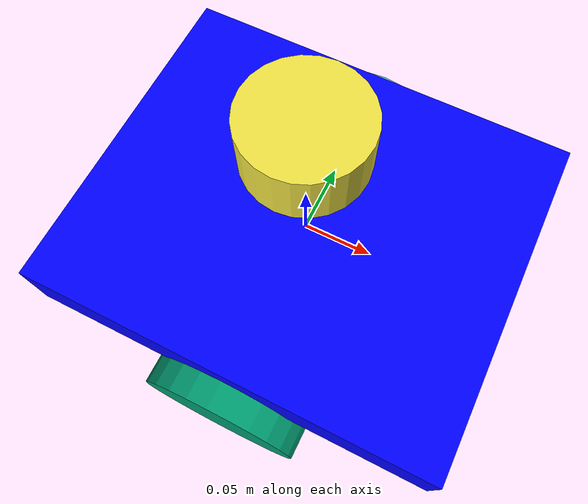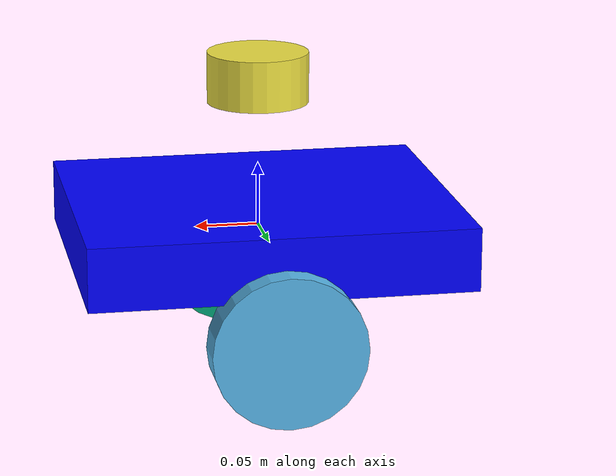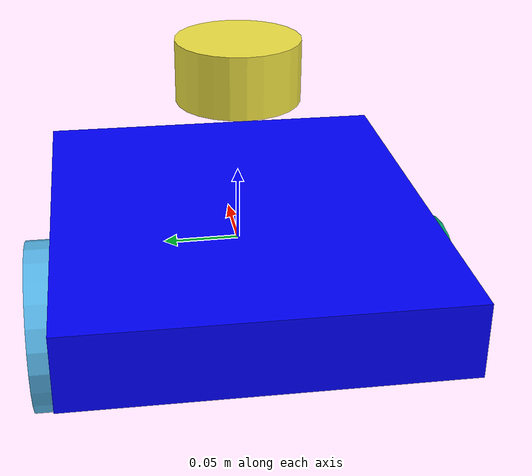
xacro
<?xml version="1.0"?>

<robot name="bumper_bot" xmlns:xacro="http://www.ros.org/wiki/xacro">

  <!-- PARAMETERS -->

  <xacro:property name="wheel_radius" value="0.06"/>
  <xacro:property name="wheel_width" value="0.03"/>

  <!-- BASE LINK -->

  <link name="base_link">

    <visual>
      <geometry>
        <box size="0.30 0.25 0.05"/>
      </geometry>
      <material name="blue">
        <color rgba="0 0 1 1"/>
      </material>
    </visual>

    <collision>
      <geometry>
        <box size="0.30 0.25 0.05"/>
      </geometry>
    </collision>

    <inertial>
      <mass value="4"/>
      <origin xyz="0 0 0"/>
      <inertia ixx="0.05" iyy="0.05" izz="0.05"
               ixy="0" ixz="0" iyz="0"/>
    </inertial>

  </link>

  <!-- LEFT WHEEL -->

  <link name="left_wheel">

    <visual>
      <origin rpy="1.5708 0 0"/>
      <geometry>
        <cylinder radius="${wheel_radius}" length="${wheel_width}"/>
      </geometry>
    </visual>

    <collision>
      <origin rpy="1.5708 0 0"/>
      <geometry>
        <cylinder radius="${wheel_radius}" length="${wheel_width}"/>
      </geometry>
    </collision>

    <inertial>
      <mass value="0.5"/>
      <origin xyz="0 0 0"/>
      <inertia ixx="0.001" iyy="0.001" izz="0.001"
               ixy="0" ixz="0" iyz="0"/>
    </inertial>

  </link>

  <!-- RIGHT WHEEL -->

  <link name="right_wheel">

    <visual>
      <origin rpy="1.5708 0 0"/>
      <geometry>
        <cylinder radius="${wheel_radius}" length="${wheel_width}"/>
      </geometry>
    </visual>

    <collision>
      <origin rpy="1.5708 0 0"/>
      <geometry>
        <cylinder radius="${wheel_radius}" length="${wheel_width}"/>
      </geometry>
    </collision>

    <inertial>
      <mass value="0.5"/>
      <origin xyz="0 0 0"/>
      <inertia ixx="0.001" iyy="0.001" izz="0.001"
               ixy="0" ixz="0" iyz="0"/>
    </inertial>

  </link>

  <!-- WHEEL JOINTS -->

  <joint name="left_wheel_joint" type="continuous">
    <parent link="base_link"/>
    <child link="left_wheel"/>
    <origin xyz="0 0.13 -${wheel_radius}"/>
    <axis xyz="0 1 0"/>
  </joint>

  <joint name="right_wheel_joint" type="continuous">
    <parent link="base_link"/>
    <child link="right_wheel"/>
    <origin xyz="0 -0.13 -${wheel_radius}"/>
    <axis xyz="0 1 0"/>
  </joint>

  <!-- LIDAR -->

  <link name="lidar_link">

    <visual>
      <geometry>
        <cylinder radius="0.04" length="0.04"/>
      </geometry>
    </visual>

  </link>

  <joint name="lidar_joint" type="fixed">
    <parent link="base_link"/>
    <child link="lidar_link"/>
    <origin xyz="0 0 0.12"/>
  </joint>

  <!-- LIDAR SENSOR -->

  <gazebo reference="lidar_link">

    <sensor type="ray" name="lidar">

      <update_rate>30</update_rate>
      <visualize>true</visualize>

      <ray>

        <scan>
          <horizontal>
            <samples>360</samples>
            <min_angle>-3.14</min_angle>
            <max_angle>3.14</max_angle>
          </horizontal>
        </scan>

        <range>
          <min>0.12</min>
          <max>6.0</max>
        </range>

      </ray>

      <plugin name="gazebo_ros_ray_sensor"
              filename="libgazebo_ros_ray_sensor.so">

        <ros>
          <remapping>~/out:=/scan</remapping>
        </ros>

        <output_type>sensor_msgs/LaserScan</output_type>
        <frame_name>lidar_link</frame_name>

      </plugin>

    </sensor>

  </gazebo>

  <!-- DIFF DRIVE -->

  <gazebo>

    <plugin name="diff_drive_controller"
            filename="libgazebo_ros_diff_drive.so">

      <left_joint>left_wheel_joint</left_joint>
      <right_joint>right_wheel_joint</right_joint>

      <wheel_separation>0.26</wheel_separation>
      <wheel_diameter>0.12</wheel_diameter>

      <command_topic>cmd_vel</command_topic>

      <odometry_topic>odom</odometry_topic>

      <robot_base_frame>base_link</robot_base_frame>

    </plugin>

  </gazebo>

</robot>
